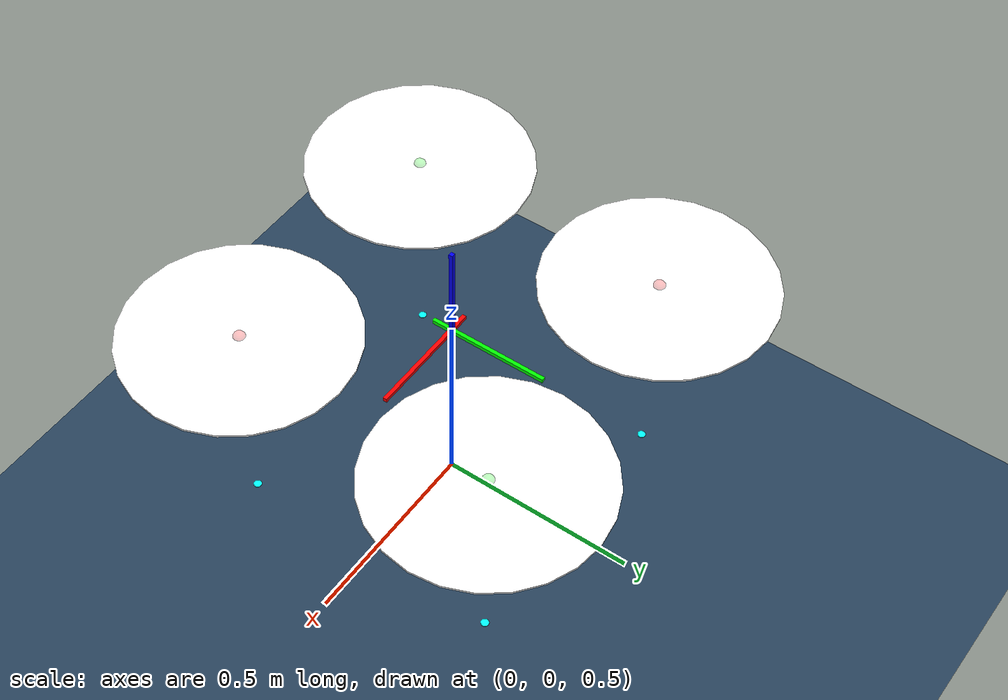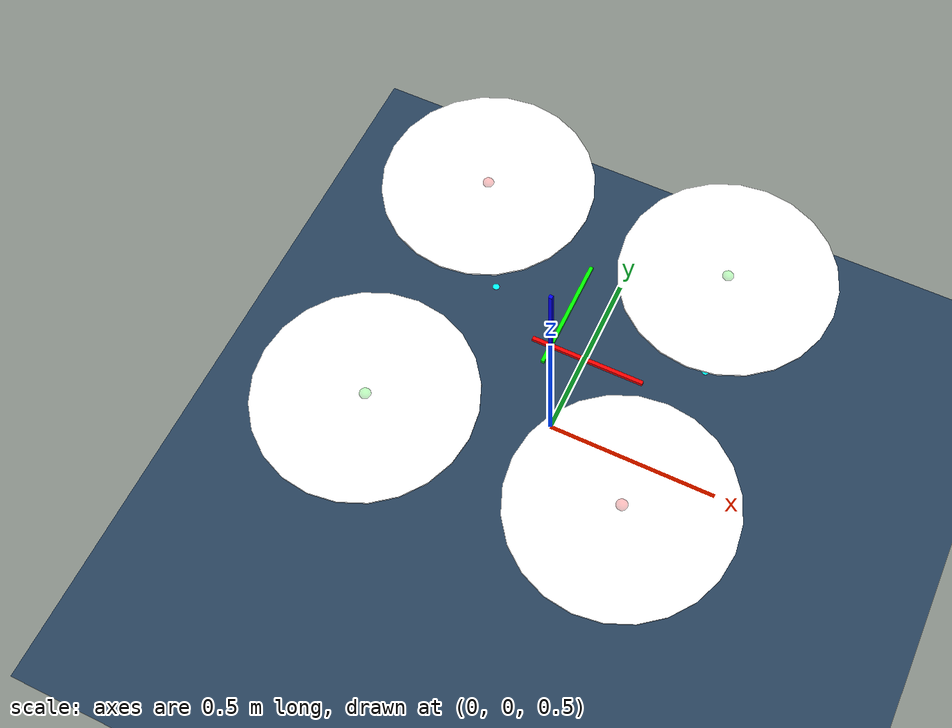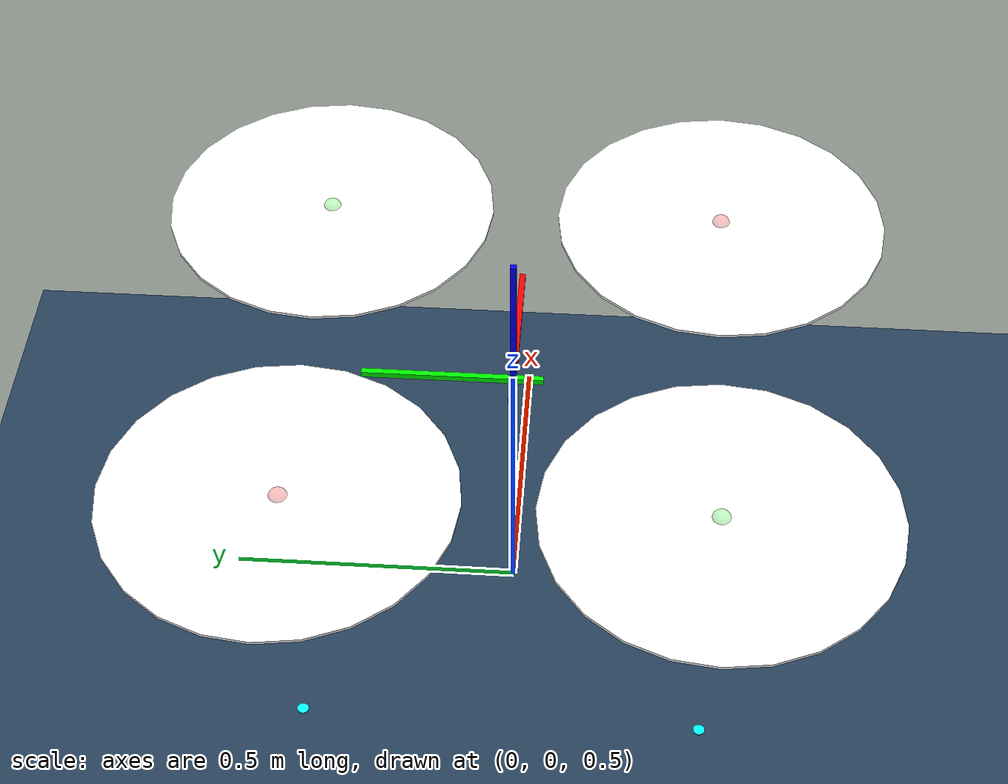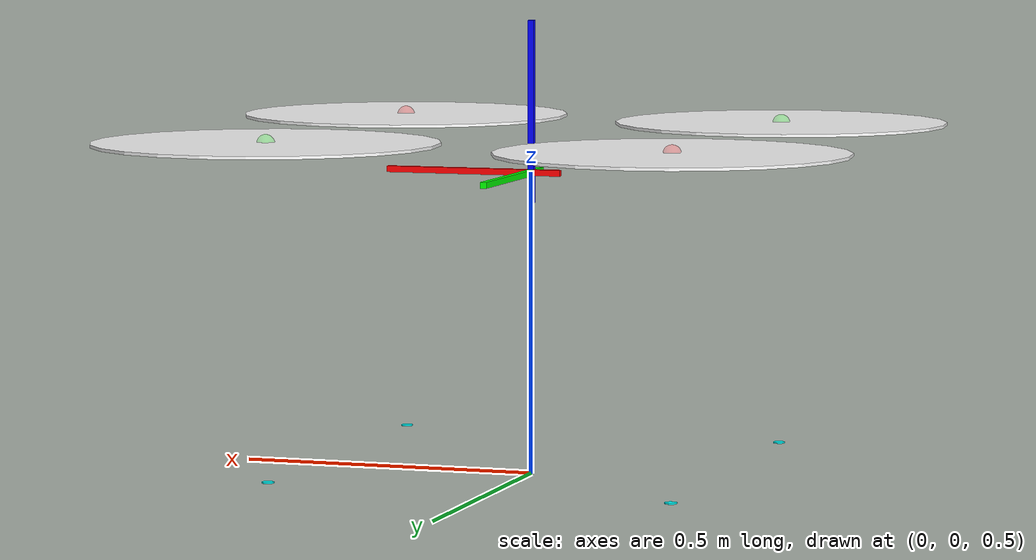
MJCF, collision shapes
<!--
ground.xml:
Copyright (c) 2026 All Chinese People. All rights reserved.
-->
<!-- Copyright (c) 2026 The Omni-FlySim Authors. All rights reserved. -->

<mujoco model="omni_quadrotor_950">
  <compiler angle="radian" autolimits="true"/>

  <include file="../../robot_models/scenes/ground.xml"/>

  <include file="../../robot_models/quadrotor_950/quadrotor_950_dependencies.xml"/>

  <worldbody>
    <body name="quadrotor_950_pos" pos="0 0 1">
      <light name="follow_light_quadrotor"
             pos="0 0 1.2"
             dir="0 0 -1"
             mode="targetbodycom"
             target="quadrotor_950_pos"
             directional="true"/>
      <include file="../../robot_models/quadrotor_950/quadrotor_950.xml"/>
    </body>
  </worldbody>

  <actuator>
    <include file="../../robot_models/quadrotor_950/quadrotor_950_control.xml"/>
  </actuator>

  <sensor>
    <include file="../../robot_models/quadrotor_950/quadrotor_950_sensor.xml"/>
  </sensor>

</mujoco>

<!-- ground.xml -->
<!-- Copyright (c) 2026 The Omni-FlySim Authors. All rights reserved. -->

<mujocoinclude>
  <statistic center="0.3 0 0.4" extent="1"/>
  <visual>
    <headlight diffuse="0.6 0.6 0.6" ambient="0.3 0.3 0.3" specular="0 0 0"/>
    <rgba haze="0.15 0.25 0.35 1"/>
    <global azimuth="120" elevation="-20"/>
  </visual>
  <asset>
    <texture type="skybox" builtin="gradient" rgb1="0.3 0.5 0.7" rgb2="0 0 0" width="512" height="3072"/>
    <texture type="2d" name="groundplane" builtin="checker" mark="edge" rgb1="0.2 0.3 0.4" rgb2="0.1 0.2 0.3" markrgb="0.8 0.8 0.8" width="300" height="300"/>
    <material name="groundplane" texture="groundplane" texuniform="true" texrepeat="5 5" reflectance="0.2"/>
  </asset>
  <worldbody>
    <light pos="1 0 2." dir="-0.5 0 -0.8"/>
    <light pos="0.3 1 2." dir="0 -0.5 -0.8"/>
    <geom name="floor" size="0 0 0.05" type="plane" material="groundplane"/>
  </worldbody>
</mujocoinclude>

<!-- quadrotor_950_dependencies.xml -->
<!-- Copyright (c) 2026 The Omni-FlySim Authors. All rights reserved. -->

<mujocoinclude>
  <default>

    <default class="rcdrone">
      <default class="drone_visual">
        <geom group="2" type="mesh" contype="0" conaffinity="0"/>
      </default>
    </default>

  </default>

  <asset>
    <material name="paint_metallic_dark" specular="0.4" shininess="0.6" rgba="0.1 0.1 0.1 1"/>
  </asset>

  <asset>
    <mesh name="quadrotor_950_base" file="meshes/quadrotor_950.stl" scale="1 1 1"/>
  </asset>
</mujocoinclude>

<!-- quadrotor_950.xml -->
<!-- Copyright (c) 2026 The Omni-FlySim Authors. All rights reserved. -->

<mujocoinclude>
  <!-- ======= QUADROTOR 950 ======= -->
  <body name="quadrotor_950" pos="0 0 0" childclass="rcdrone">
    <inertial pos="0 0 0" quat="1 0 0 0" mass="9.5" diaginertia="0.2198 0.2198 0.3197"/>

    <geom mesh="quadrotor_950_base" pos="0 0 0" material="paint_metallic_dark" class="drone_visual" />

    <!-- optional, visualization of the coordinate frame -->
    <site name="qcX" type="box" pos="0.1 0 0" size="0.15 0.005 0.005"  quat = "1 0 0 0" rgba="1 0 0 1" />
    <site name="qcY" type="box" pos="0 0.1 0" size="0.15 0.005 0.005"  quat = "0.707 0 0 0.707" rgba="0 1 0 1" />
    <site name="qcZ" type="box" pos="0 0 0.1" size="0.15 0.005 0.005"  quat = "-0.707 0 0.707 0" rgba="0 0 1 1" />

    <!-- sets thruster geoms for collisions since site's are excluded from collision checking -->
    <geom name="thruster-a00" type="cylinder" pos="0.336 0.336 0.065" size="0.28 0.0025"  quat = "1.0 0.0 0.0 0.0" rgba="1.0 1.0 1.0 0.7"/>
    <geom name="thruster-a10" type="cylinder" pos="0.336 -0.336 0.065" size="0.28 0.0025"  quat = "1.0 0.0 0.0 0.0" rgba="1.0 1.0 1.0 0.7"/>
    <geom name="thruster-a20" type="cylinder" pos="-0.336 0.336 0.065" size="0.28 0.0025"  quat = "1.0 0.0 0.0 0.0" rgba="1.0 1.0 1.0 0.7"/>
    <geom name="thruster-a30" type="cylinder" pos="-0.336 -0.336 0.065" size="0.28 0.0025"  quat = "1.0 0.0 0.0 0.0" rgba="1.0 1.0 1.0 0.7"/>

    <geom name="chassis-a00" type="cylinder" pos="0.336 0.336 -0.48" size="0.01 0.001"  quat = "1.0 0.0 0.0 0.0" rgba="0 1 1 0"/>
    <geom name="chassis-a10" type="cylinder" pos="0.336 -0.336 -0.48" size="0.01 0.001"  quat = "1.0 0.0 0.0 0.0" rgba="0 1 1 0"/>
    <geom name="chassis-a20" type="cylinder" pos="-0.336 0.336 -0.48" size="0.01 0.001"  quat = "1.0 0.0 0.0 0.0" rgba="0 1 1 0"/>
    <geom name="chassis-a30" type="cylinder" pos="-0.336 -0.336 -0.48" size="0.01 0.001"  quat = "1.0 0.0 0.0 0.0" rgba="0 1 1 0"/>
  </body>

  <joint name="main_joint" type="free" pos="0 0 0" />

  <site name="motor_0_site" type="sphere" pos="0.336 -0.336 0.065"  size="0.015" rgba="1.0 0.2 0.2 0.3"/>
  <site name="motor_1_site" type="sphere" pos="-0.336 0.336 0.065"  size="0.015" rgba="1.0 0.2 0.2 0.3"/>
  <site name="motor_2_site" type="sphere" pos="0.336 0.336 0.065"   size="0.015" rgba="0.2 1.0 0.2 0.3"/>
  <site name="motor_3_site" type="sphere" pos="-0.336 -0.336 0.065" size="0.015" rgba="0.2 1.0 0.2 0.3"/>

  <!-- sets sensor sites to attach sensors and makes it invisible -->
  <site name="main_center" type="box" pos="0 0 0" size="0.01 0.01 0.01" quat = "1.0 0.0 0.0 0.0" rgba="0 1 1 0" />

</mujocoinclude>

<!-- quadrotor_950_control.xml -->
<!-- Copyright (c) 2026 The Omni-FlySim Authors. All rights reserved. -->

<mujocoinclude>
  <motor name="motor_0" site="motor_0_site" ctrllimited="true" ctrlrange="0 50" gear="0 0 1 0 0 -0.05"/>
  <motor name="motor_1" site="motor_1_site" ctrllimited="true" ctrlrange="0 50" gear="0 0 1 0 0 -0.05"/>
  <motor name="motor_2" site="motor_2_site" ctrllimited="true" ctrlrange="0 50" gear="0 0 1 0 0 0.05"/>
  <motor name="motor_3" site="motor_3_site" ctrllimited="true" ctrlrange="0 50" gear="0 0 1 0 0 0.05"/>
</mujocoinclude>

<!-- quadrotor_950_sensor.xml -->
<!-- Copyright (c) 2026 The Omni-FlySim Authors. All rights reserved. -->

<mujocoinclude>
  <gyro name="body_gyro" site="main_center"/>
  <accelerometer name="body_linacc" site="main_center"/>
  <magnetometer name="body_mag" site="main_center" />
  <framequat name="body_quat" objtype="site" objname="main_center"/>
  <framelinvel name="body_linvel" objtype="site" objname="main_center" />
  <framelinacc name="body_frameacc" objtype="site" objname="main_center" />
</mujocoinclude>
